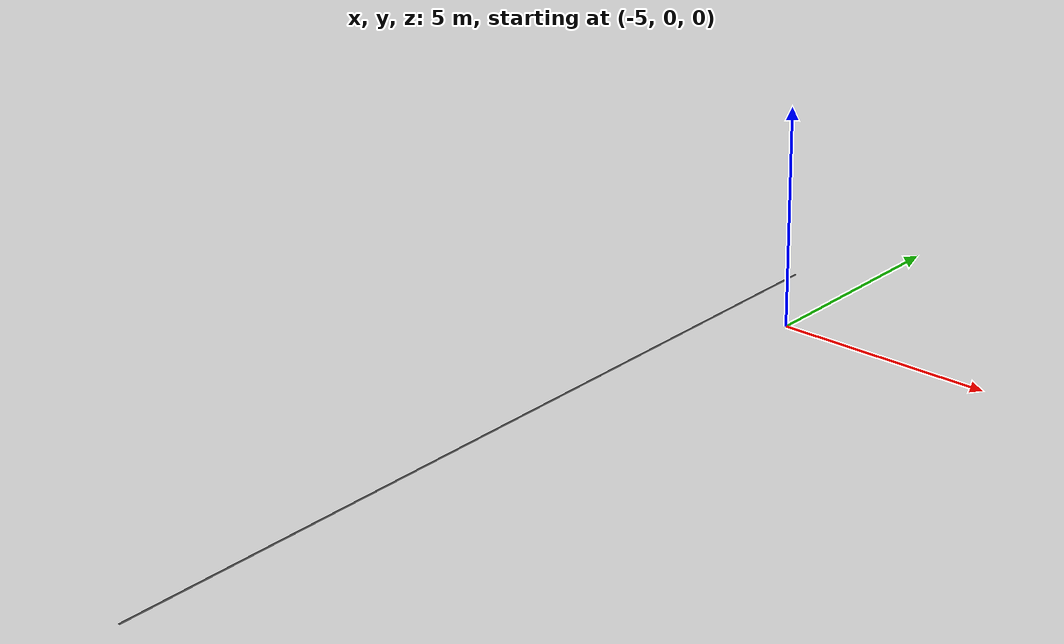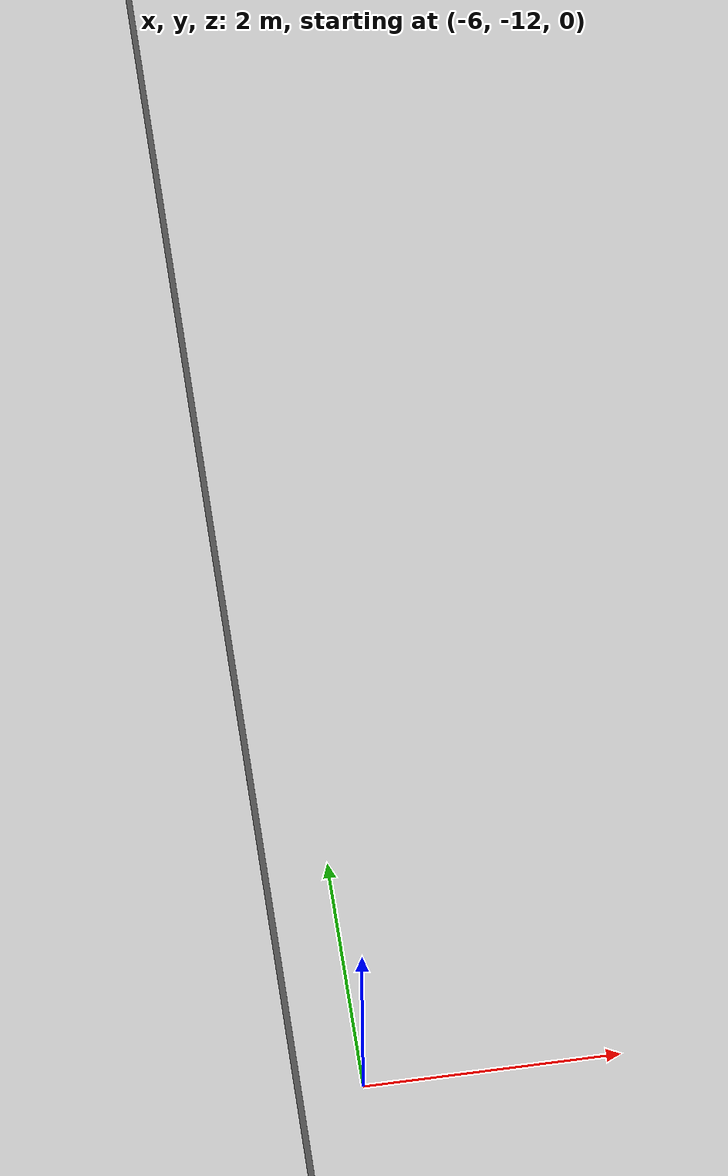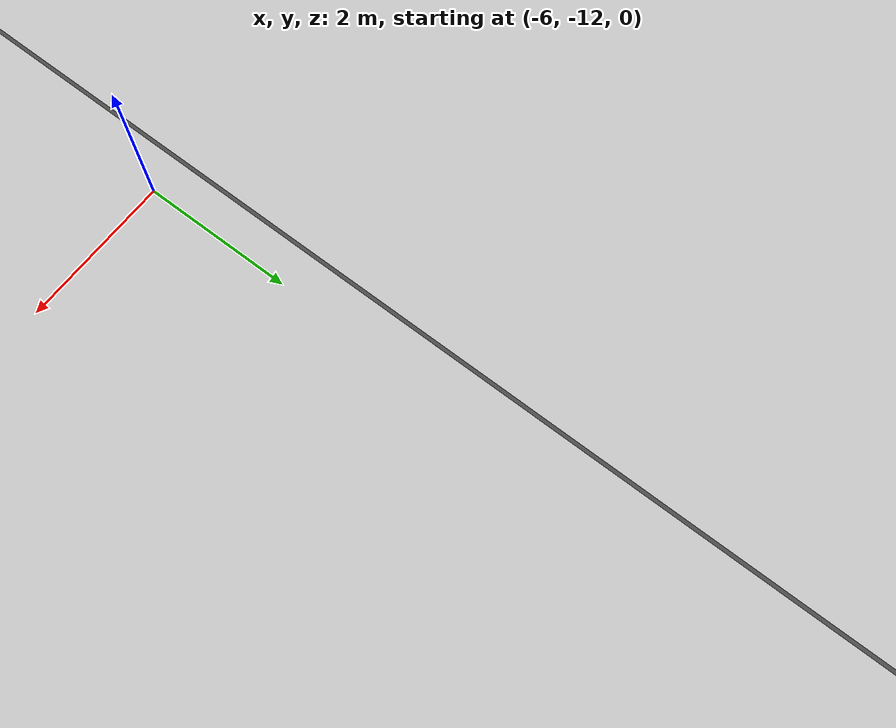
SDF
<?xml version='1.0'?>
<sdf version='1.7'>
  <model name='line_track'>
    <pose>-3.13863 -7.39356 0 0 -0 0</pose>

    <link name='Wall_14'>
      <collision name='Wall_14_Collision'>
        <geometry>
          <box>
            <size>20 0.05 0.00005</size>
          </box>
        </geometry>
        <pose>0 0 0.0025 0 -0 0</pose>
      </collision>
      <visual name='Wall_14_Visual'>
        <pose>0 0 0.0025 0 -0 0</pose>
        <geometry>
          <box>
            <size>20 0.05 0.00005</size>
          </box>
        </geometry>
        <material>
          <script>
            <uri>file://media/materials/scripts/gazebo.material</uri>
            <name>Gazebo/DarkGrey</name>
          </script>
          <ambient>0.996078 0.47451 0.0196078 1</ambient>
        </material>
        <meta>
          <layer>0</layer>
        </meta>
      </visual>
      <pose>-3.36432 -0.227192 0 0 -0 -1.5708</pose>
    </link>

    <static>1</static>
  </model>
</sdf>
